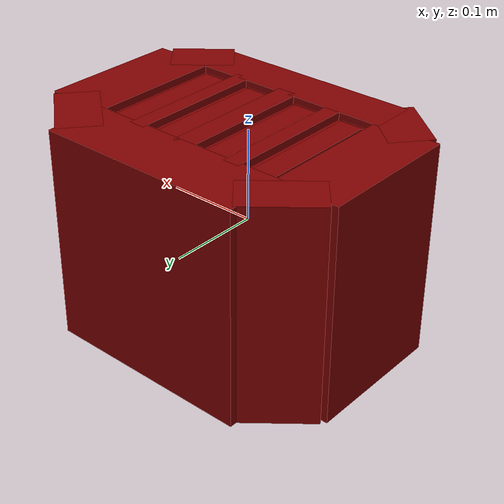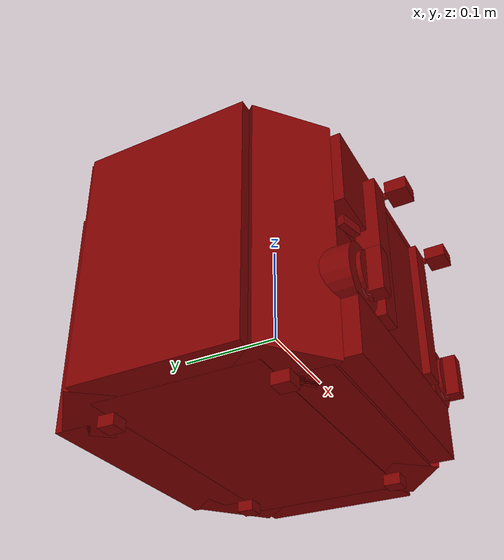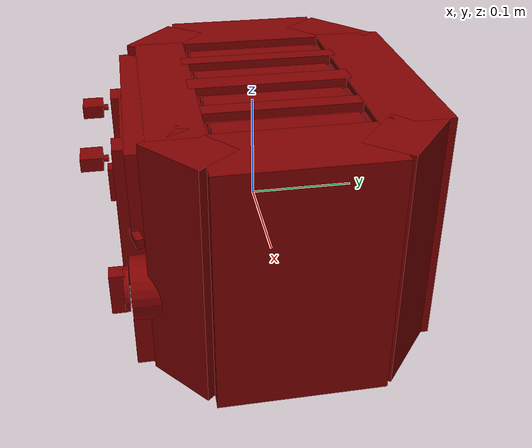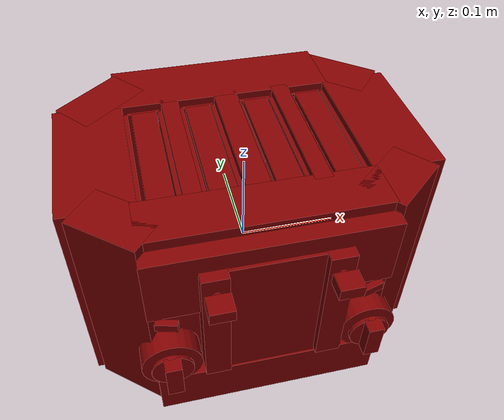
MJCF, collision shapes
<?xml version='1.0' encoding='UTF-8'?>
<mujoco model="model">
  <option timestep="0.002" gravity="0.0 0.0 -9.81"/>
  <compiler angle="radian"/>
  <asset>
    <mesh file="visuals/Body001.obj" name="Body001_vis"/>
    <mesh file="visuals/Body002.obj" name="Body002_vis"/>
    <mesh file="visuals/Button001.obj" name="Button001_vis"/>
    <mesh file="visuals/Button002.obj" name="Button002_vis"/>
    <mesh file="visuals/Konb001.obj" name="Konb001_vis"/>
    <mesh file="visuals/Konb002.obj" name="Konb002_vis"/>
    <mesh file="visuals/Lever001.obj" name="Lever001_vis"/>
    <mesh file="visuals/Lever002.obj" name="Lever002_vis"/>
    <texture file="visuals/T_BC001.png" name="Body001_material" type="2d"/>
    <material name="Body001_material" rgba="1 1 1 1.0" texture="Body001_material" shininess="0.5" specular="0.5"/>
    <texture file="visuals/T_BC001.png" name="Body002_material" type="2d"/>
    <material name="Body002_material" rgba="1 1 1 1.0" texture="Body002_material" shininess="5" specular="5"/>
    <texture file="visuals/T_BC001.png" name="Button001_material" type="2d"/>
    <material name="Button001_material" rgba="1 1 1 1.0" texture="Button001_material" shininess="1" specular="1"/>
    <texture file="visuals/T_BC001.png" name="Button002_material" type="2d"/>
    <material name="Button002_material" rgba="1 1 1 1.0" texture="Button002_material" shininess="1" specular="1"/>
    <texture file="visuals/T_BC001.png" name="Konb001_material" type="2d"/>
    <material name="Konb001_material" rgba="1 1 1 1.0" texture="Konb001_material" shininess="1" specular="1"/>
    <texture file="visuals/T_BC001.png" name="Konb002_material" type="2d"/>
    <material name="Konb002_material" rgba="1 1 1 1.0" texture="Konb002_material" shininess="1" specular="1"/>
    <texture file="visuals/T_BC001.png" name="Lever001_material" type="2d"/>
    <material name="Lever001_material" rgba="1 1 1 1.0" texture="Lever001_material" shininess="0.5" specular="0.5"/>
    <texture file="visuals/T_BC001.png" name="Lever002_material" type="2d"/>
    <material name="Lever002_material" rgba="1 1 1 1.0" texture="Lever002_material" shininess="0.5" specular="0.5"/>
  </asset>
  <default>
    <default class="visual">
      <geom conaffinity="0" contype="0" group="1" type="mesh"/>
    </default>
    <default class="collision">
      <geom group="0" rgba="0.5 0 0 0.5"/>
    </default>
    <default class="spawn">
      <geom group="0" rgba="1 1 1 0.5" contype="0" conaffinity="0"/>
      <site group="0" rgba="1 1 1 0.5"/>
    </default>
    <default class="region">
      <geom group="1" conaffinity="0" contype="0" rgba="0 1 0 0"/>
    </default>
  </default>
  <worldbody>
    <body>
      <body name="object">
        <geom mesh="Body001_vis" type="mesh" solimp="0.998 0.998 0.001" solref="0.001 1" friction="0.95 0.3 0.1" class="visual" material="Body001_material"/>
        <geom class="collision" type="box" pos="-0.14172929525375366 0.015817148610949516 0.0056557320058345795" size="0.034604761749506 0.07647000253200531 0.1145644336938858" quat="1.0 0.0 0.0 0.0" density="1000.0"/>
        <geom class="collision" type="box" pos="0.14105713367462158 0.015817148610949516 0.0056557320058345795" size="0.034604761749506 0.07647000253200531 0.11456446349620819" quat="1.0 0.0 0.0 0.0" density="1000.0"/>
        <geom class="collision" type="box" pos="0.00014714288408868015 0.015817148610949516 0.0056557320058345795" size="0.011663300916552544 0.07646971195936203 0.1145649179816246" quat="1.0 0.0 0.0 0.0" density="1000.0"/>
        <geom class="collision" type="box" pos="-0.0009645466925576329 0.1206241250038147 0.0056557320058345795" size="0.11235687136650085 0.033788811415433884 0.1145649179816246" quat="1.0 0.0 0.0 0.0" density="1000.0"/>
        <geom class="collision" type="box" pos="-0.0009645466925576329 -0.07915101200342178 0.0056557320058345795" size="0.11235687136650085 0.024625087156891823 0.1145649179816246" quat="1.0 0.0 0.0 0.0" density="1000.0"/>
        <geom class="collision" type="box" pos="-0.05883101373910904 0.015817148610949516 0.0056557320058345795" size="0.00859940703958273 0.07646976411342621 0.1145649179816246" quat="1.0 0.0 0.0 0.0" density="1000.0"/>
        <geom class="collision" type="box" pos="0.05899663269519806 0.015817148610949516 0.0056557320058345795" size="0.00859940703958273 0.076469786465168 0.1145649179816246" quat="1.0 0.0 0.0 0.0" density="1000.0"/>
        <geom class="collision" type="box" pos="-0.12707635760307312 0.10570249706506729 0.0056557320058345795" size="0.04039281979203224 0.022680848836898804 0.1145649179816246" quat="0.9396926164627075 0.0 0.0 0.3420201539993286" density="1000.0"/>
        <geom class="collision" type="box" pos="0.12562860548496246 0.10570249706506729 0.0056557320058345795" size="0.04039281979203224 0.022680848836898804 0.1145649179816246" quat="0.9396926164627075 0.0 0.0 -0.3420201539993286" density="1000.0"/>
        <geom class="collision" type="box" pos="0.12562860548496246 -0.07143163681030273 0.0056557320058345795" size="0.033461496233940125 0.022680848836898804 0.1145649179816246" quat="0.3420201539993286 0.0 0.0 -0.9396926164627075" density="1000.0"/>
        <geom class="collision" type="box" pos="-0.12707635760307312 -0.07143167406320572 0.0056557320058345795" size="0.03591546788811684 0.022680848836898804 0.1145649179816246" quat="0.34202003479003906 0.0 0.0 0.9396926760673523" density="1000.0"/>
        <geom class="collision" type="box" pos="-0.0009645466925576329 0.015817148610949516 -0.07156917452812195" size="0.1447247713804245 0.07647000253200531 0.03792557120323181" quat="1.0 0.0 0.0 0.0" density="1000.0"/>
        <geom class="collision" type="box" pos="-0.11608884483575821 0.09239614754915237 -0.11462190747261047" size="0.008337839506566525 0.008143988437950611 0.005357668269425631" quat="1.0 0.0 0.0 0.0" density="1000.0"/>
        <geom class="collision" type="box" pos="0.11664550751447678 0.09239614754915237 -0.11462190747261047" size="0.008337841369211674 0.00814399030059576 0.005357668269425631" quat="1.0 0.0 0.0 0.0" density="1000.0"/>
        <geom class="collision" type="box" pos="-0.11608884483575821 -0.06530660390853882 -0.11462190747261047" size="0.008337843231856823 0.00814399216324091 0.005357668269425631" quat="1.0 0.0 0.0 0.0" density="1000.0"/>
        <geom class="collision" type="box" pos="0.11664550751447678 -0.06530660390853882 -0.11462190747261047" size="0.008337845094501972 0.008143994025886059 0.005357668269425631" quat="1.0 0.0 0.0 0.0" density="1000.0"/>
        <geom class="collision" type="cylinder" pos="-0.09793946892023087 -0.11229516565799713 -0.030136441811919212" size="0.029281342402100563 0.013490691781044006" quat="0.7071068286895752 0.7071067690849304 -1.5700924318127872e-16 -5.9269340452702814e-24" density="1000.0"/>
        <geom class="collision" type="cylinder" pos="0.0977095291018486 -0.11229516565799713 -0.029215261340141296" size="0.028824597597122192 0.01328025572001934" quat="0.7071068286895752 0.7071067690849304 -1.5700922994638892e-16 -1.0606174128406802e-23" density="1000.0"/>
        <geom class="collision" type="box" pos="-0.0009645466925576329 -0.11419861763715744 -0.07915717363357544" size="0.11235687136650085 0.01184391975402832 0.02652960829436779" quat="1.0 0.0 0.0 0.0" density="1000.0"/>
        <geom class="collision" type="box" pos="-0.05459017679095268 -0.12111537158489227 0.022079240530729294" size="0.012338492088019848 0.010644311085343361 0.07051140069961548" quat="1.0 0.0 0.0 0.0" density="1000.0"/>
        <geom class="collision" type="box" pos="0.00036077946424484253 -0.11444919556379318 0.01587756723165512" size="0.04511181637644768 0.009701150469481945 0.0764128714799881" quat="1.0 0.0 0.0 0.0" density="1000.0"/>
        <geom class="collision" type="box" pos="-0.0009645466925576329 -0.10994076728820801 0.07458801567554474" size="0.11348836869001389 0.010791265405714512 0.03556706756353378" quat="1.0 0.0 0.0 0.0" density="1000.0"/>
        <geom class="collision" type="box" pos="0.05618317797780037 -0.12111537158489227 0.022079240530729294" size="0.012338492088019848 0.010644311085343361 0.07051140069961548" quat="1.0 0.0 0.0 0.0" density="1000.0"/>
        <body name="Body002">
          <geom mesh="Body002_vis" type="mesh" solimp="0.998 0.998 0.001" solref="0.001 1" friction="0.95 0.3 0.1" class="visual" material="Body002_material"/>
          <geom class="collision" type="box" pos="-0.06984309107065201 0.015817148610949516 0.03871316835284233" size="0.0021027105394750834 0.06823010742664337 0.07406066358089447" quat="1.0 0.0 0.0 0.0" density="1000.0"/>
          <geom class="collision" type="box" pos="-0.104941725730896 0.015817148610949516 0.03871316835284233" size="0.0021027105394750834 0.06823010742664337 0.07406066358089447" quat="1.0 0.0 0.0 0.0" density="1000.0"/>
          <geom class="collision" type="box" pos="-0.04778110235929489 0.015817148610949516 0.03871316835284233" size="0.0021027105394750834 0.06823010742664337 0.07406066358089447" quat="1.0 0.0 0.0 0.0" density="1000.0"/>
          <geom class="collision" type="box" pos="-0.014437403529882431 0.015817148610949516 0.03871316835284233" size="0.0021027105394750834 0.06823010742664337 0.07406066358089447" quat="1.0 0.0 0.0 0.0" density="1000.0"/>
          <geom class="collision" type="box" pos="0.013390796259045601 0.015817148610949516 0.03871316835284233" size="0.0021027105394750834 0.06823010742664337 0.07406066358089447" quat="1.0 0.0 0.0 0.0" density="1000.0"/>
          <geom class="collision" type="box" pos="0.04798801988363266 0.015817148610949516 0.03871316835284233" size="0.0021027105394750834 0.06823010742664337 0.07406066358089447" quat="1.0 0.0 0.0 0.0" density="1000.0"/>
          <geom class="collision" type="box" pos="0.07005001604557037 0.015817148610949516 0.03871316835284233" size="0.0021027105394750834 0.06823010742664337 0.07406066358089447" quat="1.0 0.0 0.0 0.0" density="1000.0"/>
          <geom class="collision" type="box" pos="0.10389512777328491 0.015817148610949516 0.03871316835284233" size="0.0021027105394750834 0.06823010742664337 0.07406066358089447" quat="1.0 0.0 0.0 0.0" density="1000.0"/>
          <geom class="collision" type="box" pos="0.08634581416845322 0.08564980328083038 0.03871316835284233" size="0.0021027105394750834 0.01603742688894272 0.07406066358089447" quat="0.7071068286895752 0.0 0.0 -0.7071067094802856" density="1000.0"/>
          <geom class="collision" type="box" pos="0.08634581416845322 -0.05323604494333267 0.03871316835284233" size="0.0021027105394750834 0.01603742688894272 0.07406066358089447" quat="0.7071068286895752 0.0 0.0 -0.7071067094802856" density="1000.0"/>
          <geom class="collision" type="box" pos="0.031692229211330414 0.08564980328083038 0.03871316835284233" size="0.0021027105394750834 0.01603742688894272 0.07406066358089447" quat="0.7071068286895752 0.0 0.0 -0.7071067094802856" density="1000.0"/>
          <geom class="collision" type="box" pos="0.031692229211330414 -0.05323604494333267 0.03871316835284233" size="0.0021027105394750834 0.01603742688894272 0.07406066358089447" quat="0.7071068286895752 0.0 0.0 -0.7071067094802856" density="1000.0"/>
          <geom class="collision" type="box" pos="-0.030231785029172897 0.08564980328083038 0.03871316835284233" size="0.0021027105394750834 0.01603742688894272 0.07406066358089447" quat="0.7071068286895752 0.0 0.0 -0.7071067094802856" density="1000.0"/>
          <geom class="collision" type="box" pos="-0.030231785029172897 -0.05323604494333267 0.03871316835284233" size="0.0021027105394750834 0.01603742688894272 0.07406066358089447" quat="0.7071068286895752 0.0 0.0 -0.7071067094802856" density="1000.0"/>
          <geom class="collision" type="box" pos="-0.08714170753955841 0.08564980328083038 0.03871316835284233" size="0.0021027105394750834 0.01603742688894272 0.07406066358089447" quat="0.7071068286895752 0.0 0.0 -0.7071067094802856" density="1000.0"/>
          <geom class="collision" type="box" pos="-0.08714170753955841 -0.05323604494333267 0.03871316835284233" size="0.0021027105394750834 0.01603742688894272 0.07406066358089447" quat="0.7071068286895752 0.0 0.0 -0.7071067094802856" density="1000.0"/>
        </body>
        <body name="Button001">
          <joint axis="0.2588190734386444 0.9659258723258972 0.0" pos="-0.09814552962779999 -0.11692027747631073 0.023036032915115356" limited="true" name="Button001_joint" range="0.0 0.0015" type="slide" damping="1" frictionloss="1" armature=".01" stiffness="0.05"/>
          <geom mesh="Button001_vis" type="mesh" solimp="0.998 0.998 0.001" solref="0.001 1" friction="0.95 0.3 0.1" class="visual" material="Button001_material"/>
          <geom class="collision" type="box" pos="-0.09797513484954834 -0.11681856960058212 0.023036032915115356" size="0.01073279045522213 0.003315222216770053 0.004554397892206907" quat="0.9918488264083862 0.0 0.0 -0.12742026150226593" density="1000.0"/>
        </body>
        <body name="Button002">
          <joint axis="-0.2588190734386444 0.9659258723258972 0.0" pos="0.09814588725566864 -0.11692027747631073 0.023036032915115356" limited="true" name="Button002_joint" range="0.0 0.0015" type="slide" damping="1" frictionloss="1" armature=".01" stiffness="0.05"/>
          <geom mesh="Button002_vis" type="mesh" solimp="0.998 0.998 0.001" solref="0.001 1" friction="0.95 0.3 0.1" class="visual" material="Button002_material"/>
          <geom class="collision" type="box" pos="0.09797549247741699 -0.11681856960058212 0.023036032915115356" size="0.010732791386544704 0.003315222216770053 0.004554397892206907" quat="3.893341826710639e-08 -0.12742029130458832 0.9918488264083862 2.894502415529132e-07" density="1000.0"/>
        </body>
        <body name="Konb001">
          <joint axis="0.0 1.0 0.0" pos="-0.097976453602314 -0.13500334322452545 -0.029979873448610306" limited="true" name="Konb001_joint" range="0.0 4.974188368183839" type="hinge" damping="1" frictionloss="1" armature=".01" stiffness="0.05"/>
          <geom mesh="Konb001_vis" type="mesh" solimp="0.998 0.998 0.001" solref="0.001 1" friction="0.95 0.3 0.1" class="visual" material="Konb001_material"/>
          <geom class="collision" type="cylinder" pos="-0.09797513484954834 -0.12962616980075836 -0.02997979149222374" size="0.020374925807118416 0.0019433266716077924" quat="0.7071068286895752 0.7071067690849304 -1.5700922994638892e-16 -5.926933650839829e-24" density="1000.0"/>
          <geom class="collision" type="box" pos="-0.09797513484954834 -0.13714677095413208 -0.02997979149222374" size="0.007797203026711941 0.006897462531924248 0.019859323278069496" quat="1.0 0.0 0.0 0.0" density="1000.0"/>
        </body>
        <body name="Konb002">
          <joint axis="0.0 1.0 0.0" pos="0.09797417372465134 -0.13500334322452545 -0.029979873448610306" limited="true" name="Konb002_joint" range="0.0 4.974188368183839" type="hinge" damping="1" frictionloss="1" armature=".01" stiffness="0.05"/>
          <geom mesh="Konb002_vis" type="mesh" solimp="0.998 0.998 0.001" solref="0.001 1" friction="0.95 0.3 0.1" class="visual" material="Konb002_material"/>
          <geom class="collision" type="cylinder" pos="0.09797549247741699 -0.1295967847108841 -0.02997979149222374" size="0.02034541219472885 0.0021463471930474043" quat="0.7071068286895752 0.7071067690849304 -1.5700922994638892e-16 -5.926933650839829e-24" density="1000.0"/>
          <geom class="collision" type="box" pos="0.09812764823436737 -0.13714677095413208 -0.02997979149222374" size="0.007797203026711941 0.006897462531924248 0.019859323278069496" quat="1.0 0.0 0.0 0.0" density="1000.0"/>
        </body>
        <body name="Lever001">
          <joint axis="0.0 0.0 -1.0" pos="-0.05451972037553787 -0.1397016942501068 0.07896167784929276" limited="true" name="Lever001_joint" range="0.0 0.11199999999999999" type="slide" damping="1" frictionloss="1" armature=".01" stiffness="1" springref="-0.8"/>
          <geom mesh="Lever001_vis" type="mesh" solimp="0.998 0.998 0.001" solref="0.001 1" friction="0.95 0.3 0.1" class="visual" material="Lever001_material"/>
          <geom class="collision" type="cylinder" pos="-0.054409731179475784 -0.13891613483428955 0.07896167039871216" size="0.0029476557392627 0.003998193424195051" quat="0.7071068286895752 0.7071067690849304 -1.5700922994638892e-16 -1.528541381711287e-23" density="1000.0"/>
          <geom class="collision" type="box" pos="-0.054409731179475784 -0.14917054772377014 0.07896167039871216" size="0.011082443408668041 0.009575016796588898 0.006027932744473219" quat="1.0 0.0 0.0 0.0" name="sideL_lever_knob" density="1000.0"/>
          <geom class="collision" type="box" pos="-0.08632217347621918 0.01587485894560814 0.11159031093120575" size="0.012550000101327896 0.06499999761581421 0.0033785046543926" quat="1.0 0.0 0.0 0.0" name="sideL_slotL_floor" density="1000.0"/>
          <geom class="collision" type="box" pos="-0.030671432614326477 0.01587485894560814 0.11159031093120575" size="0.012550000101327896 0.06499999761581421 0.0033785046543926" quat="1.0 0.0 0.0 0.0" name="sideL_slotR_floor" density="1000.0"/>
        </body>
        <body name="Lever002">
          <joint axis="0.0 0.0 -1.0" pos="0.05440133064985275 -0.1397016942501068 0.07896167784929276" limited="true" name="Lever002_joint" range="0.0 0.11199999999999999" type="slide" damping="1" frictionloss="1" armature=".01" stiffness="1" springref="-0.8"/>
          <geom mesh="Lever002_vis" type="mesh" solimp="0.998 0.998 0.001" solref="0.001 1" friction="0.95 0.3 0.1" class="visual" material="Lever002_material"/>
          <geom class="collision" type="cylinder" pos="0.05441014841198921 -0.13879063725471497 0.07896167039871216" size="0.0029476557392627 0.003998193424195051" quat="0.7071068286895752 0.7071067690849304 -1.5700922994638892e-16 -1.528541381711287e-23" density="1000.0"/>
          <geom class="collision" type="box" pos="0.05441014841198921 -0.14904505014419556 0.07896167039871216" size="0.011082446202635765 0.00957502145320177 0.006027935538440943" quat="1.0 0.0 0.0 0.0" name="sideR_lever_knob" density="1000.0"/>
          <geom class="collision" type="box" pos="0.030771881341934204 0.01587485894560814 0.11159031093120575" size="0.012550000101327896 0.06499999761581421 0.0033785046543926" quat="1.0 0.0 0.0 0.0" name="sideR_slotL_floor" density="1000.0"/>
          <geom class="collision" type="box" pos="0.08713148534297943 0.01587485894560814 0.11159031093120575" size="0.012550000101327896 0.06499999761581421 0.0033785046543926" quat="1.0 0.0 0.0 0.0" name="sideR_slotR_floor" density="1000.0"/>
        </body>
        <geom class="region" name="reg_main" type="box" pos="3.725290298461914e-09 0.011790886521339417 0.0" size="0.1796974390745163 0.14654140174388885 0.11892426013946533"/>
      </body>
    </body>
  </worldbody>
  <actuator>
    <motor name="Button001_joint_actuator" joint="Button001_joint" gear="0.1"/>
    <motor name="Button002_joint_actuator" joint="Button002_joint" gear="0.1"/>
    <motor name="Konb001_joint_actuator" joint="Konb001_joint" gear="10"/>
    <motor name="Konb002_joint_actuator" joint="Konb002_joint" gear="10"/>
    <motor name="Lever001_joint_actuator" joint="Lever001_joint" gear="5"/>
    <motor name="Lever002_joint_actuator" joint="Lever002_joint" gear="5"/>
  </actuator>
</mujoco>
